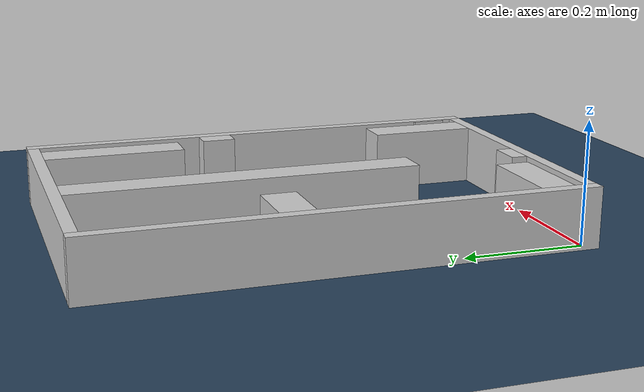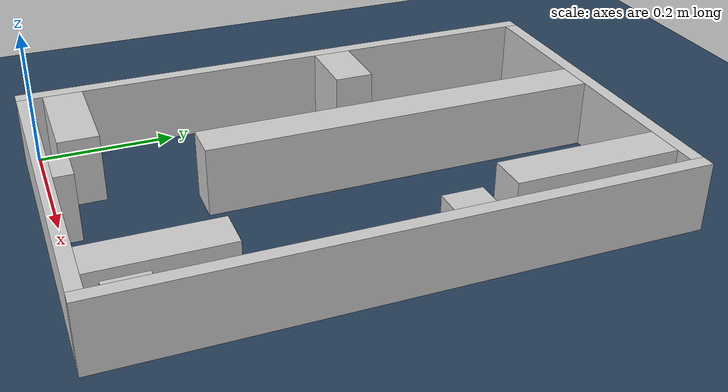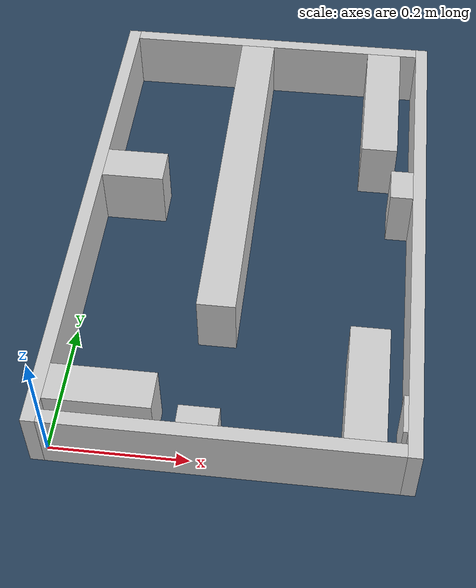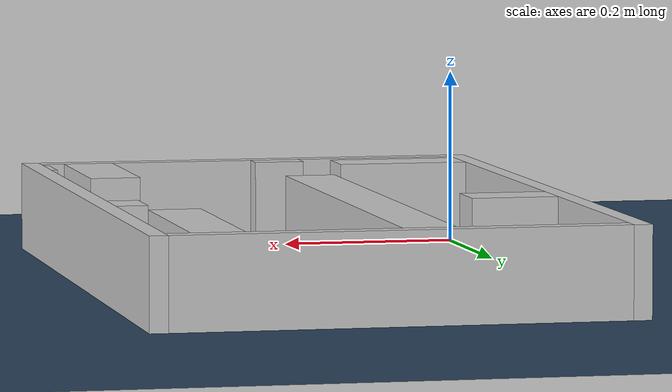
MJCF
<?xml version="1.0" ?>
<mujoco model="generated_real_template">
  <compiler angle="degree"/>
  <option timestep="0.002" integrator="implicitfast" iterations="100" cone="elliptic"/>
  <default>
    <geom density="1"/>
  </default>
  <asset>
    <texture builtin="gradient" height="3072" rgb1="0.3 0.5 0.7" rgb2="0 0 0" type="skybox" width="512"/>
    <texture builtin="checker" height="300" mark="edge" markrgb="0.8 0.8 0.8" name="groundplane" rgb1="0.2 0.3 0.4" rgb2="0.1 0.2 0.3" type="2d" width="300"/>
    <material name="groundplane" reflectance="0.2" texrepeat="5 5" texture="groundplane" texuniform="true"/>
  </asset>
  <worldbody>
    <light dir="0 0 -1" directional="true" pos="0 0 1.5"/>
    <geom name="floor" type="plane" condim="4" friction="0.5 0.005 0.001" material="groundplane" size="0 0 0.05"/>
    <body name="walls">
      <geom name="wall_boundary_left" type="box" condim="4" friction="1.0 0.005 0.0001" rgba="0.8 0.8 0.8 1" pos="-0.010000 0.387500 0.050000" euler="0 0 0.000000" size="0.010000 0.407500 0.050000"/>
      <geom name="wall_boundary_right" type="box" condim="4" friction="1.0 0.005 0.0001" rgba="0.8 0.8 0.8 1" pos="0.500000 0.387500 0.050000" euler="0 0 0.000000" size="0.010000 0.407500 0.050000"/>
      <geom name="wall_boundary_bottom" type="box" condim="4" friction="1.0 0.005 0.0001" rgba="0.8 0.8 0.8 1" pos="0.245000 -0.010000 0.050000" euler="0 0 0.000000" size="0.245000 0.010000 0.050000"/>
      <geom name="wall_boundary_top" type="box" condim="4" friction="1.0 0.005 0.0001" rgba="0.8 0.8 0.8 1" pos="0.245000 0.785000 0.050000" euler="0 0 0.000000" size="0.245000 0.010000 0.050000"/>
      <geom name="wall_inner_1_1" type="box" condim="4" friction="1.0 0.005 0.0001" rgba="0.8 0.8 0.8 1" pos="0.212805 0.013490 0.050000" euler="0 0 90.000000" size="0.013490 0.028500 0.050000"/>
      <geom name="wall_inner_1_2" type="box" condim="4" friction="1.0 0.005 0.0001" rgba="0.8 0.8 0.8 1" pos="0.212805 0.485482 0.050000" euler="0 0 90.000000" size="0.289518 0.028500 0.050000"/>
      <geom name="wall_inner_2_1" type="box" condim="4" friction="1.0 0.005 0.0001" rgba="0.8 0.8 0.8 1" pos="0.434761 0.090600 0.050000" euler="0 0 90.000000" size="0.090600 0.028500 0.050000"/>
      <geom name="wall_inner_2_2" type="box" condim="4" friction="1.0 0.005 0.0001" rgba="0.8 0.8 0.8 1" pos="0.434761 0.656306 0.050000" euler="0 0 90.000000" size="0.118694 0.028500 0.050000"/>
      <geom name="wall_inner_3_1" type="box" condim="4" friction="1.0 0.005 0.0001" rgba="0.8 0.8 0.8 1" pos="0.074721 0.045558 0.050000" euler="0 0 0.000000" size="0.074721 0.028500 0.050000"/>
      <geom name="wall_inner_3_2" type="box" condim="4" friction="1.0 0.005 0.0001" rgba="0.8 0.8 0.8 1" pos="0.486702 0.045558 0.050000" euler="0 0 0.000000" size="0.003298 0.028500 0.050000"/>
      <geom name="wall_inner_4_1" type="box" condim="4" friction="1.0 0.005 0.0001" rgba="0.8 0.8 0.8 1" pos="0.048383 0.463888 0.050000" euler="0 0 0.000000" size="0.048383 0.028500 0.050000"/>
      <geom name="wall_inner_4_2" type="box" condim="4" friction="1.0 0.005 0.0001" rgba="0.8 0.8 0.8 1" pos="0.472558 0.463888 0.050000" euler="0 0 0.000000" size="0.017442 0.028500 0.050000"/>
    </body>
  </worldbody>
</mujoco>
